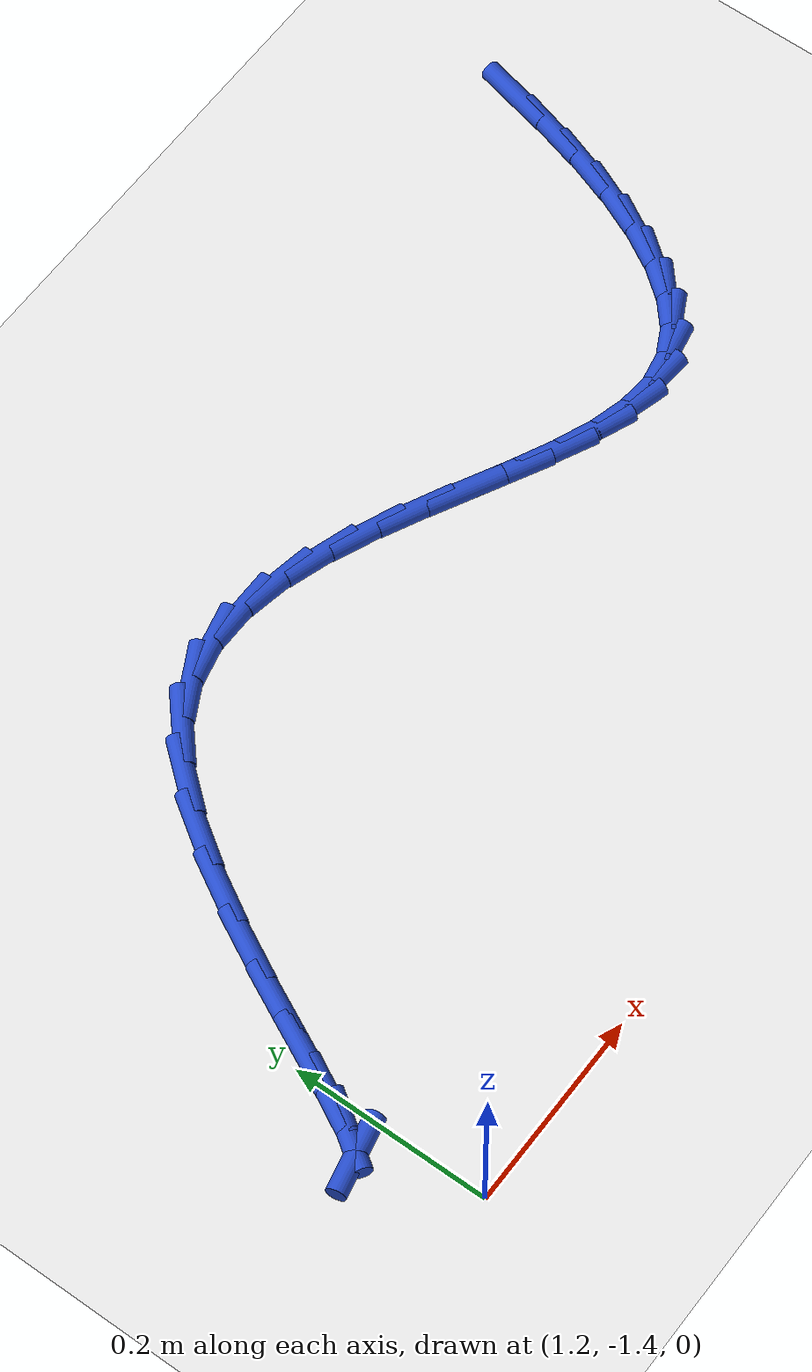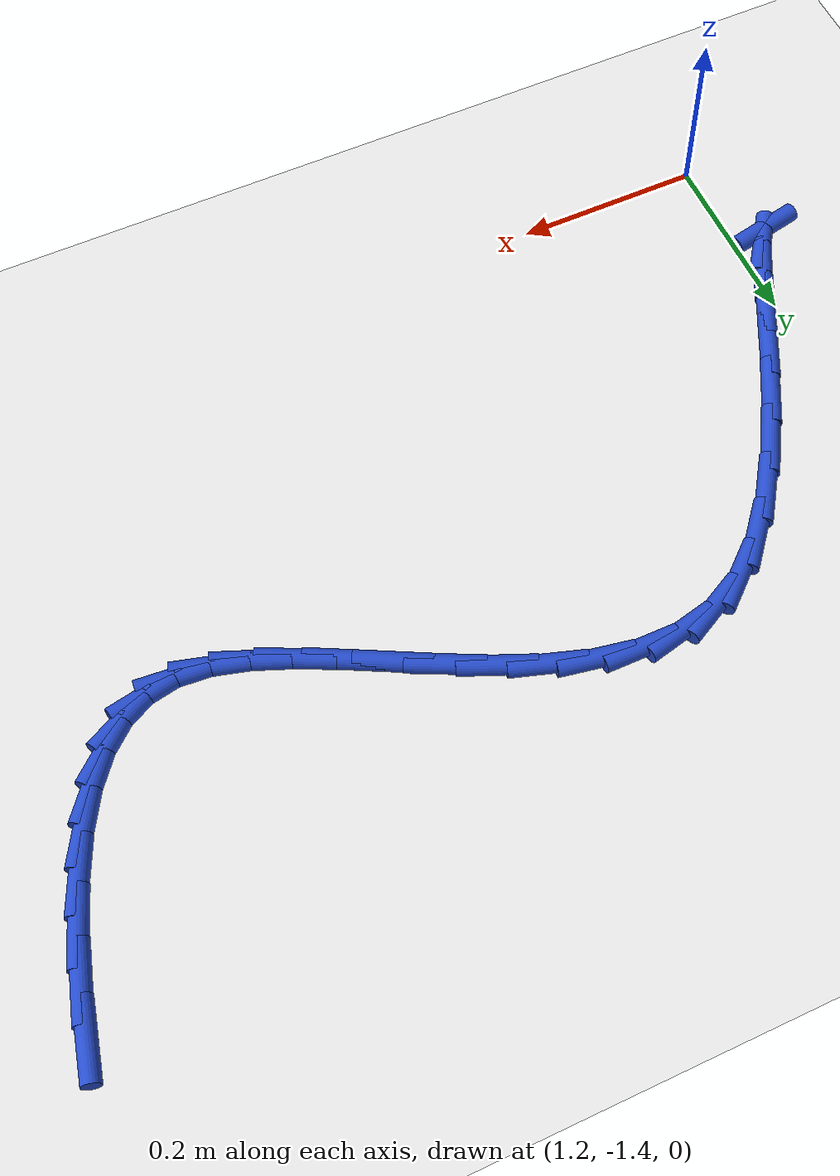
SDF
<sdf version="1.6">
 <world name="default">
  <model name="ground_plane">
   <static>1</static>
   <link name="link">
    <collision name="collision">
     <geometry><plane><normal>0 0 1</normal><size>100 100</size></plane></geometry>
     <surface><friction><ode><mu>100</mu><mu2>50</mu2></ode></friction></surface>
    </collision>
    <visual name="visual">
     <cast_shadows>0</cast_shadows>
     <geometry><plane><normal>0 0 1</normal><size>100 100</size></plane></geometry>
     <material>
      <script><uri>file://media/materials/scripts/gazebo.material</uri><name>Gazebo/WhiteGlow</name></script>
     </material>
    </visual>
   </link>
  </model>
  <model name="line">
   <link name="link_109">
    <pose>2.1362547227506203 -0.7558885063118242 0.01 0 1.57 1.3301839681043932</pose>
    <collision name="collision">
     <geometry><cylinder><radius>0.01</radius><length>0.08</length></cylinder></geometry>
    </collision>
    <visual name="visual">
     <material>
      <script><name>Gazebo/Blue</name><uri>file://media/materials/scripts/gazebo.material</uri></script>
     </material>
     <geometry><cylinder><radius>0.01</radius><length>0.08</length></cylinder></geometry>
    </visual>
   </link>
   <link name="link_110">
    <pose>2.1238679394500135 -0.8063714250969415 0.01 0 1.57 1.2830739590966878</pose>
    <collision name="collision">
     <geometry><cylinder><radius>0.01</radius><length>0.08</length></cylinder></geometry>
    </collision>
    <visual name="visual">
     <material>
      <script><name>Gazebo/Blue</name><uri>file://media/materials/scripts/gazebo.material</uri></script>
     </material>
     <geometry><cylinder><radius>0.01</radius><length>0.08</length></cylinder></geometry>
    </visual>
   </link>
   <link name="link_111">
    <pose>2.109606471154231 -0.8545628047912105 0.01 0 1.57 1.223190171035051</pose>
    <collision name="collision">
     <geometry><cylinder><radius>0.01</radius><length>0.08</length></cylinder></geometry>
    </collision>
    <visual name="visual">
     <material>
      <script><name>Gazebo/Blue</name><uri>file://media/materials/scripts/gazebo.material</uri></script>
     </material>
     <geometry><cylinder><radius>0.01</radius><length>0.08</length></cylinder></geometry>
    </visual>
   </link>
   <link name="link_112">
    <pose>2.093313752660257 -0.8995308066787254 0.01 0 1.57 1.1456060980238354</pose>
    <collision name="collision">
     <geometry><cylinder><radius>0.01</radius><length>0.08</length></cylinder></geometry>
    </collision>
    <visual name="visual">
     <material>
      <script><name>Gazebo/Blue</name><uri>file://media/materials/scripts/gazebo.material</uri></script>
     </material>
     <geometry><cylinder><radius>0.01</radius><length>0.08</length></cylinder></geometry>
    </visual>
   </link>
   <link name="link_113">
    <pose>2.074833218765076 -0.9403435920435832 0.01 0 1.57 1.043037182448613</pose>
    <collision name="collision">
     <geometry><cylinder><radius>0.01</radius><length>0.08</length></cylinder></geometry>
    </collision>
    <visual name="visual">
     <material>
      <script><name>Gazebo/Blue</name><uri>file://media/materials/scripts/gazebo.material</uri></script>
     </material>
     <geometry><cylinder><radius>0.01</radius><length>0.08</length></cylinder></geometry>
    </visual>
   </link>
   <link name="link_114">
    <pose>2.0540083042656736 -0.9760693221698784 0.01 0 1.57 0.9051440557734386</pose>
    <collision name="collision">
     <geometry><cylinder><radius>0.01</radius><length>0.08</length></cylinder></geometry>
    </collision>
    <visual name="visual">
     <material>
      <script><name>Gazebo/Blue</name><uri>file://media/materials/scripts/gazebo.material</uri></script>
     </material>
     <geometry><cylinder><radius>0.01</radius><length>0.08</length></cylinder></geometry>
    </visual>
   </link>
   <link name="link_115">
    <pose>2.0306824439590336 -1.0057761583417062 0.01 0 1.57 0.7192800184675576</pose>
    <collision name="collision">
     <geometry><cylinder><radius>0.01</radius><length>0.08</length></cylinder></geometry>
    </collision>
    <visual name="visual">
     <material>
      <script><name>Gazebo/Blue</name><uri>file://media/materials/scripts/gazebo.material</uri></script>
     </material>
     <geometry><cylinder><radius>0.01</radius><length>0.08</length></cylinder></geometry>
    </visual>
   </link>
   <link name="link_116">
    <pose>2.0046990726421408 -1.0285322618431614 0.01 0 1.57 0.4767507269996236</pose>
    <collision name="collision">
     <geometry><cylinder><radius>0.01</radius><length>0.08</length></cylinder></geometry>
    </collision>
    <visual name="visual">
     <material>
      <script><name>Gazebo/Blue</name><uri>file://media/materials/scripts/gazebo.material</uri></script>
     </material>
     <geometry><cylinder><radius>0.01</radius><length>0.08</length></cylinder></geometry>
    </visual>
   </link>
   <link name="link_117">
    <pose>1.9759016251119788 -1.0434057939583392 0.01 0 1.57 0.18859430125559815</pose>
    <collision name="collision">
     <geometry><cylinder><radius>0.01</radius><length>0.08</length></cylinder></geometry>
    </collision>
    <visual name="visual">
     <material>
      <script><name>Gazebo/Blue</name><uri>file://media/materials/scripts/gazebo.material</uri></script>
     </material>
     <geometry><cylinder><radius>0.01</radius><length>0.08</length></cylinder></geometry>
    </visual>
   </link>
   <link name="link_118">
    <pose>1.9441343803120743 -1.0494689709691845 0.01 0 1.57 -0.08357877627296459</pose>
    <collision name="collision">
     <geometry><cylinder><radius>0.01</radius><length>0.08</length></cylinder></geometry>
    </collision>
    <visual name="visual">
     <material>
      <script><name>Gazebo/Blue</name><uri>file://media/materials/scripts/gazebo.material</uri></script>
     </material>
     <geometry><cylinder><radius>0.01</radius><length>0.08</length></cylinder></geometry>
    </visual>
   </link>
   <link name="link_119">
    <pose>1.909400912750167 -1.0465592118086304 0.01 0 1.57 -0.27112683690852524</pose>
    <collision name="collision">
     <geometry><cylinder><radius>0.01</radius><length>0.08</length></cylinder></geometry>
    </collision>
    <visual name="visual">
     <material>
      <script><name>Gazebo/Blue</name><uri>file://media/materials/scripts/gazebo.material</uri></script>
     </material>
     <geometry><cylinder><radius>0.01</radius><length>0.08</length></cylinder></geometry>
    </visual>
   </link>
   <link name="link_120">
    <pose>1.872051003371539 -1.0361769954269848 0.01 0 1.57 -0.3871856117185208</pose>
    <collision name="collision">
     <geometry><cylinder><radius>0.01</radius><length>0.08</length></cylinder></geometry>
    </collision>
    <visual name="visual">
     <material>
      <script><name>Gazebo/Blue</name><uri>file://media/materials/scripts/gazebo.material</uri></script>
     </material>
     <geometry><cylinder><radius>0.01</radius><length>0.08</length></cylinder></geometry>
    </visual>
   </link>
   <link name="link_121">
    <pose>1.8324798832300428 -1.02004112790587 0.01 0 1.57 -0.45339520669194533</pose>
    <collision name="collision">
     <geometry><cylinder><radius>0.01</radius><length>0.08</length></cylinder></geometry>
    </collision>
    <visual name="visual">
     <material>
      <script><name>Gazebo/Blue</name><uri>file://media/materials/scripts/gazebo.material</uri></script>
     </material>
     <geometry><cylinder><radius>0.01</radius><length>0.08</length></cylinder></geometry>
    </visual>
   </link>
   <link name="link_122">
    <pose>1.7910827833795309 -0.9998704153269088 0.01 0 1.57 -0.4834860086576357</pose>
    <collision name="collision">
     <geometry><cylinder><radius>0.01</radius><length>0.08</length></cylinder></geometry>
    </collision>
    <visual name="visual">
     <material>
      <script><name>Gazebo/Blue</name><uri>file://media/materials/scripts/gazebo.material</uri></script>
     </material>
     <geometry><cylinder><radius>0.01</radius><length>0.08</length></cylinder></geometry>
    </visual>
   </link>
   <link name="link_123">
    <pose>1.7482549348738565 -0.9773836637717243 0.01 0 1.57 -0.48444226378448535</pose>
    <collision name="collision">
     <geometry><cylinder><radius>0.01</radius><length>0.08</length></cylinder></geometry>
    </collision>
    <visual name="visual">
     <material>
      <script><name>Gazebo/Blue</name><uri>file://media/materials/scripts/gazebo.material</uri></script>
     </material>
     <geometry><cylinder><radius>0.01</radius><length>0.08</length></cylinder></geometry>
    </visual>
   </link>
   <link name="link_124">
    <pose>1.704391568766872 -0.9542996793219389 0.01 0 1.57 -0.45843154738219094</pose>
    <collision name="collision">
     <geometry><cylinder><radius>0.01</radius><length>0.08</length></cylinder></geometry>
    </collision>
    <visual name="visual">
     <material>
      <script><name>Gazebo/Blue</name><uri>file://media/materials/scripts/gazebo.material</uri></script>
     </material>
     <geometry><cylinder><radius>0.01</radius><length>0.08</length></cylinder></geometry>
    </visual>
   </link>
   <link name="link_125">
    <pose>1.659887916112431 -0.9323372680591762 0.01 0 1.57 -0.4038343311286169</pose>
    <collision name="collision">
     <geometry><cylinder><radius>0.01</radius><length>0.08</length></cylinder></geometry>
    </collision>
    <visual name="visual">
     <material>
      <script><name>Gazebo/Blue</name><uri>file://media/materials/scripts/gazebo.material</uri></script>
     </material>
     <geometry><cylinder><radius>0.01</radius><length>0.08</length></cylinder></geometry>
    </visual>
   </link>
   <link name="link_126">
    <pose>1.6151392079643845 -0.9132152360650582 0.01 0 1.57 -0.31561688773560503</pose>
    <collision name="collision">
     <geometry><cylinder><radius>0.01</radius><length>0.08</length></cylinder></geometry>
    </collision>
    <visual name="visual">
     <material>
      <script><name>Gazebo/Blue</name><uri>file://media/materials/scripts/gazebo.material</uri></script>
     </material>
     <geometry><cylinder><radius>0.01</radius><length>0.08</length></cylinder></geometry>
    </visual>
   </link>
   <link name="link_127">
    <pose>1.5705406753765867 -0.8986523894212078 0.01 0 1.57 -0.18589379476761916</pose>
    <collision name="collision">
     <geometry><cylinder><radius>0.01</radius><length>0.08</length></cylinder></geometry>
    </collision>
    <visual name="visual">
     <material>
      <script><name>Gazebo/Blue</name><uri>file://media/materials/scripts/gazebo.material</uri></script>
     </material>
     <geometry><cylinder><radius>0.01</radius><length>0.08</length></cylinder></geometry>
    </visual>
   </link>
   <link name="link_128">
    <pose>1.526487549402889 -0.8903675342092481 0.01 0 1.57 -0.00668143786870774</pose>
    <collision name="collision">
     <geometry><cylinder><radius>0.01</radius><length>0.08</length></cylinder></geometry>
    </collision>
    <visual name="visual">
     <material>
      <script><name>Gazebo/Blue</name><uri>file://media/materials/scripts/gazebo.material</uri></script>
     </material>
     <geometry><cylinder><radius>0.01</radius><length>0.08</length></cylinder></geometry>
    </visual>
   </link>
   <link name="link_129">
    <pose>1.4833750610971452 -0.8900794765108018 0.01 0 1.57 0.22194787900194207</pose>
    <collision name="collision">
     <geometry><cylinder><radius>0.01</radius><length>0.08</length></cylinder></geometry>
    </collision>
    <visual name="visual">
     <material>
      <script><name>Gazebo/Blue</name><uri>file://media/materials/scripts/gazebo.material</uri></script>
     </material>
     <geometry><cylinder><radius>0.01</radius><length>0.08</length></cylinder></geometry>
    </visual>
   </link>
   <link name="link_130">
    <pose>1.4415984415132082 -0.8995070224074918 0.01 0 1.57 0.480271120695891</pose>
    <collision name="collision">
     <geometry><cylinder><radius>0.01</radius><length>0.08</length></cylinder></geometry>
    </collision>
    <visual name="visual">
     <material>
      <script><name>Gazebo/Blue</name><uri>file://media/materials/scripts/gazebo.material</uri></script>
     </material>
     <geometry><cylinder><radius>0.01</radius><length>0.08</length></cylinder></geometry>
    </visual>
   </link>
   <link name="link_131">
    <pose>1.4015529209863633 -0.9203689564528582 0.01 0 1.57 0.7172910151306218</pose>
    <collision name="collision">
     <geometry><cylinder><radius>0.01</radius><length>0.08</length></cylinder></geometry>
    </collision>
    <visual name="visual">
     <material>
      <script><name>Gazebo/Blue</name><uri>file://media/materials/scripts/gazebo.material</uri></script>
     </material>
     <geometry><cylinder><radius>0.01</radius><length>0.08</length></cylinder></geometry>
    </visual>
   </link>
   <link name="link_132">
    <pose>1.3636032838658634 -0.9534719081359347 0.01 0 1.57 0.8770985088369492</pose>
    <collision name="collision">
     <geometry><cylinder><radius>0.01</radius><length>0.08</length></cylinder></geometry>
    </collision>
    <visual name="visual">
     <material>
      <script><name>Gazebo/Blue</name><uri>file://media/materials/scripts/gazebo.material</uri></script>
     </material>
     <geometry><cylinder><radius>0.01</radius><length>0.08</length></cylinder></geometry>
    </visual>
   </link>
   <link name="link_133">
    <pose>1.3280028457100588 -0.9962829264167529 0.01 0 1.57 0.9798637773802102</pose>
    <collision name="collision">
     <geometry><cylinder><radius>0.01</radius><length>0.08</length></cylinder></geometry>
    </collision>
    <visual name="visual">
     <material>
      <script><name>Gazebo/Blue</name><uri>file://media/materials/scripts/gazebo.material</uri></script>
     </material>
     <geometry><cylinder><radius>0.01</radius><length>0.08</length></cylinder></geometry>
    </visual>
   </link>
   <link name="link_134">
    <pose>1.2949794186230337 -1.045504982358611 0.01 0 1.57 1.0471636905410215</pose>
    <collision name="collision">
     <geometry><cylinder><radius>0.01</radius><length>0.08</length></cylinder></geometry>
    </collision>
    <visual name="visual">
     <material>
      <script><name>Gazebo/Blue</name><uri>file://media/materials/scripts/gazebo.material</uri></script>
     </material>
     <geometry><cylinder><radius>0.01</radius><length>0.08</length></cylinder></geometry>
    </visual>
   </link>
   <link name="link_135">
    <pose>1.2647608147088722 -1.0978410470248072 0.01 0 1.57 1.0902755903725512</pose>
    <collision name="collision">
     <geometry><cylinder><radius>0.01</radius><length>0.08</length></cylinder></geometry>
    </collision>
    <visual name="visual">
     <material>
      <script><name>Gazebo/Blue</name><uri>file://media/materials/scripts/gazebo.material</uri></script>
     </material>
     <geometry><cylinder><radius>0.01</radius><length>0.08</length></cylinder></geometry>
    </visual>
   </link>
   <link name="link_136">
    <pose>1.2375748460716567 -1.149994091478641 0.01 0 1.57 1.1139264036140566</pose>
    <collision name="collision">
     <geometry><cylinder><radius>0.01</radius><length>0.08</length></cylinder></geometry>
    </collision>
    <visual name="visual">
     <material>
      <script><name>Gazebo/Blue</name><uri>file://media/materials/scripts/gazebo.material</uri></script>
     </material>
     <geometry><cylinder><radius>0.01</radius><length>0.08</length></cylinder></geometry>
    </visual>
   </link>
   <link name="link_137">
    <pose>1.2136493248154714 -1.1986670867834104 0.01 0 1.57 1.116947910351331</pose>
    <collision name="collision">
     <geometry><cylinder><radius>0.01</radius><length>0.08</length></cylinder></geometry>
    </collision>
    <visual name="visual">
     <material>
      <script><name>Gazebo/Blue</name><uri>file://media/materials/scripts/gazebo.material</uri></script>
     </material>
     <geometry><cylinder><radius>0.01</radius><length>0.08</length></cylinder></geometry>
    </visual>
   </link>
   <link name="link_138">
    <pose>1.1932120630443985 -1.2405630040024136 0.01 0 1.57 1.0869862791659575</pose>
    <collision name="collision">
     <geometry><cylinder><radius>0.01</radius><length>0.08</length></cylinder></geometry>
    </collision>
    <visual name="visual">
     <material>
      <script><name>Gazebo/Blue</name><uri>file://media/materials/scripts/gazebo.material</uri></script>
     </material>
     <geometry><cylinder><radius>0.01</radius><length>0.08</length></cylinder></geometry>
    </visual>
   </link>
   <link name="link_139">
    <pose>1.1764908728625227 -1.2723848141989493 0.01 0 1.57 0.9651138145452144</pose>
    <collision name="collision">
     <geometry><cylinder><radius>0.01</radius><length>0.08</length></cylinder></geometry>
    </collision>
    <visual name="visual">
     <material>
      <script><name>Gazebo/Blue</name><uri>file://media/materials/scripts/gazebo.material</uri></script>
     </material>
     <geometry><cylinder><radius>0.01</radius><length>0.08</length></cylinder></geometry>
    </visual>
   </link>
   <link name="link_140">
    <pose>1.1637135663739264 -1.2908354884363171 0.01 0 1.57 0.20424508810851663</pose>
    <collision name="collision">
     <geometry><cylinder><radius>0.01</radius><length>0.08</length></cylinder></geometry>
    </collision>
    <visual name="visual">
     <material>
      <script><name>Gazebo/Blue</name><uri>file://media/materials/scripts/gazebo.material</uri></script>
     </material>
     <geometry><cylinder><radius>0.01</radius><length>0.08</length></cylinder></geometry>
    </visual>
   </link>
  </model>
 </world>
</sdf>
